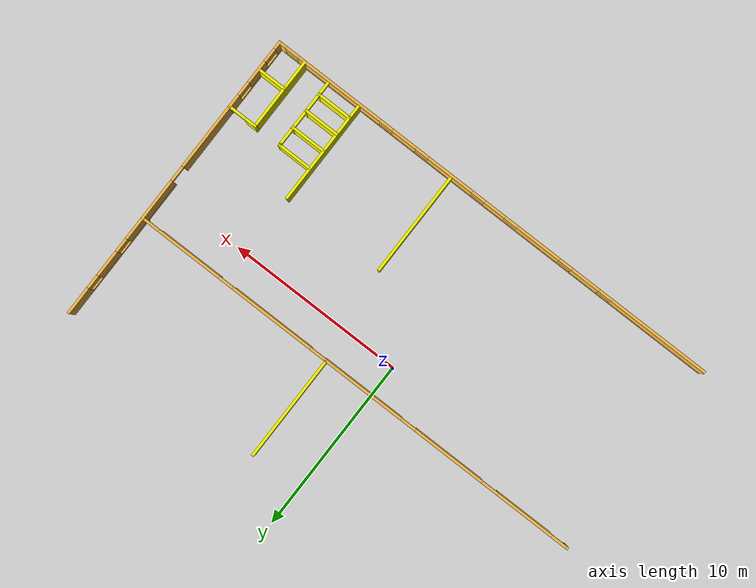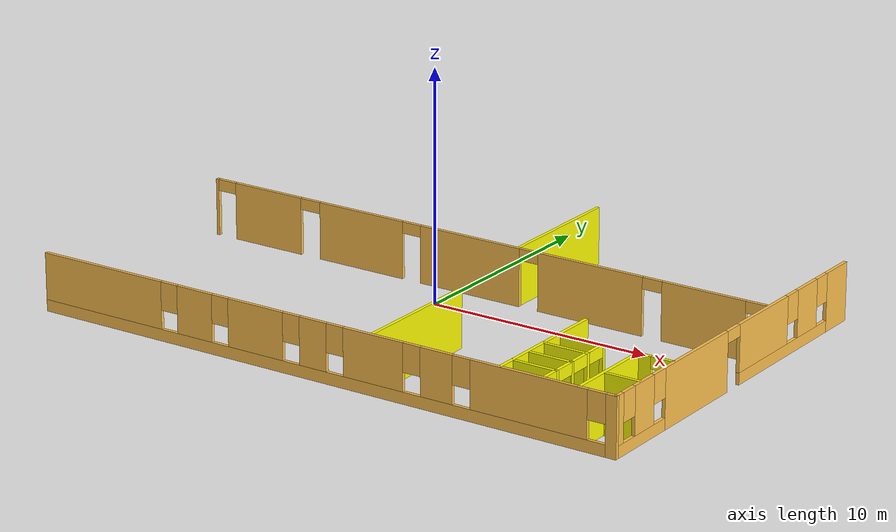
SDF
<sdf version="1.6">
 <model name="mybuilding">
  <pose>1.04921 -0.845204 0 0 -0 0</pose>
  <link name="Wall_149">
   <collision name="Wall_149_Collision">
    <geometry><box><size>6 0.15 2.5</size></box></geometry>
    <pose>0 0 1.25 0 -0 0</pose>
   </collision>
   <visual name="Wall_149_Visual">
    <pose>0 0 1.25 0 -0 0</pose>
    <geometry><box><size>6 0.15 2.5</size></box></geometry>
    <material>
     <script><uri>file://media/materials/scripts/gazebo.material</uri><name>Gazebo/Grey</name></script>
     <ambient>1 1 0 1</ambient>
    </material>
    <meta><layer>0</layer></meta>
   </visual>
   <pose>1.80042 5.59279 0 0 0 -1.5708</pose>
  </link>
  <link name="Wall_154">
   <collision name="Wall_154_Collision">
    <geometry><box><size>6 0.15 2.5</size></box></geometry>
    <pose>0 0 1.25 0 -0 0</pose>
   </collision>
   <visual name="Wall_154_Visual">
    <pose>0 0 1.25 0 -0 0</pose>
    <geometry><box><size>6 0.15 2.5</size></box></geometry>
    <material>
     <script><uri>file://media/materials/scripts/gazebo.material</uri><name>Gazebo/Grey</name></script>
     <ambient>1 1 0 1</ambient>
    </material>
    <meta><layer>0</layer></meta>
   </visual>
   <pose>2.51252 -5.57355 0 0 0 -1.5708</pose>
  </link>
  <link name="Wall_158">
   <collision name="Wall_158_Collision">
    <geometry><box><size>6 0.15 2.5</size></box></geometry>
    <pose>0 0 1.25 0 -0 0</pose>
   </collision>
   <visual name="Wall_158_Visual">
    <pose>0 0 1.25 0 -0 0</pose>
    <geometry><box><size>6 0.15 2.5</size></box></geometry>
    <material>
     <script><uri>file://media/materials/scripts/gazebo.material</uri><name>Gazebo/Grey</name></script>
     <ambient>1 1 0 1</ambient>
    </material>
    <meta><layer>0</layer></meta>
   </visual>
   <pose>8.34754 -5.57355 0 0 0 -1.5708</pose>
  </link>
  <link name="Wall_162">
   <collision name="Wall_162_Collision">
    <geometry><box><size>2 0.15 2.5</size></box></geometry>
    <pose>0 0 1.25 0 -0 0</pose>
   </collision>
   <visual name="Wall_162_Visual">
    <pose>0 0 1.25 0 -0 0</pose>
    <geometry><box><size>2 0.15 2.5</size></box></geometry>
    <material>
     <script><uri>file://media/materials/scripts/gazebo.material</uri><name>Gazebo/Grey</name></script>
     <ambient>1 1 0 1</ambient>
    </material>
    <meta><layer>0</layer></meta>
   </visual>
   <pose>9.34295 -4.49272 0 0 0 -8.3e-05</pose>
  </link>
  <link name="Wall_163">
   <pose>10.2678 -6.5178 0 0 0 -1.5708</pose>
   <visual name="Wall_163_Visual_0">
    <pose>-2.0133 0 1.25 0 -0 0</pose>
    <geometry><box><size>0.173407 0.15 2.5</size></box></geometry>
    <material>
     <script><uri>file://media/materials/scripts/gazebo.material</uri><name>Gazebo/Grey</name></script>
     <ambient>1 1 0 1</ambient>
    </material>
    <meta><layer>0</layer></meta>
   </visual>
   <collision name="Wall_163_Collision_0">
    <geometry><box><size>0.173407 0.15 2.5</size></box></geometry>
    <pose>-2.0133 0 1.25 0 -0 0</pose>
   </collision>
   <visual name="Wall_163_Visual_1">
    <pose>-0.937243 0 1.25 0 -0 0</pose>
    <geometry><box><size>0.1787 0.15 2.5</size></box></geometry>
    <material>
     <script><uri>file://media/materials/scripts/gazebo.material</uri><name>Gazebo/Grey</name></script>
     <ambient>1 1 0 1</ambient>
    </material>
    <meta><layer>0</layer></meta>
   </visual>
   <collision name="Wall_163_Collision_1">
    <geometry><box><size>0.1787 0.15 2.5</size></box></geometry>
    <pose>-0.937243 0 1.25 0 -0 0</pose>
   </collision>
   <visual name="Wall_163_Visual_2">
    <pose>0.125594 0 1.25 0 -0 0</pose>
    <geometry><box><size>0.146974 0.15 2.5</size></box></geometry>
    <material>
     <script><uri>file://media/materials/scripts/gazebo.material</uri><name>Gazebo/Grey</name></script>
     <ambient>1 1 0 1</ambient>
    </material>
    <meta><layer>0</layer></meta>
   </visual>
   <collision name="Wall_163_Collision_2">
    <geometry><box><size>0.146974 0.15 2.5</size></box></geometry>
    <pose>0.125594 0 1.25 0 -0 0</pose>
   </collision>
   <visual name="Wall_163_Visual_3">
    <pose>1.16567 0 1.25 0 -0 0</pose>
    <geometry><box><size>0.133179 0.15 2.5</size></box></geometry>
    <material>
     <script><uri>file://media/materials/scripts/gazebo.material</uri><name>Gazebo/Grey</name></script>
     <ambient>1 1 0 1</ambient>
    </material>
    <meta><layer>0</layer></meta>
   </visual>
   <collision name="Wall_163_Collision_3">
    <geometry><box><size>0.133179 0.15 2.5</size></box></geometry>
    <pose>1.16567 0 1.25 0 -0 0</pose>
   </collision>
   <visual name="Wall_163_Visual_4">
    <pose>-1.47659 0 2.25 0 -0 0</pose>
    <geometry><box><size>0.9 0.15 0.5</size></box></geometry>
    <material>
     <script><uri>file://media/materials/scripts/gazebo.material</uri><name>Gazebo/Grey</name></script>
     <ambient>1 1 0 1</ambient>
    </material>
    <meta><layer>0</layer></meta>
   </visual>
   <collision name="Wall_163_Collision_4">
    <geometry><box><size>0.9 0.15 0.5</size></box></geometry>
    <pose>-1.47659 0 2.25 0 -0 0</pose>
   </collision>
   <visual name="Wall_163_Visual_5">
    <pose>-0.397893 0 2.25 0 -0 0</pose>
    <geometry><box><size>0.9 0.15 0.5</size></box></geometry>
    <material>
     <script><uri>file://media/materials/scripts/gazebo.material</uri><name>Gazebo/Grey</name></script>
     <ambient>1 1 0 1</ambient>
    </material>
    <meta><layer>0</layer></meta>
   </visual>
   <collision name="Wall_163_Collision_5">
    <geometry><box><size>0.9 0.15 0.5</size></box></geometry>
    <pose>-0.397893 0 2.25 0 -0 0</pose>
   </collision>
   <visual name="Wall_163_Visual_6">
    <pose>0.649081 0 2.25 0 -0 0</pose>
    <geometry><box><size>0.9 0.15 0.5</size></box></geometry>
    <material>
     <script><uri>file://media/materials/scripts/gazebo.material</uri><name>Gazebo/Grey</name></script>
     <ambient>1 1 0 1</ambient>
    </material>
    <meta><layer>0</layer></meta>
   </visual>
   <collision name="Wall_163_Collision_6">
    <geometry><box><size>0.9 0.15 0.5</size></box></geometry>
    <pose>0.649081 0 2.25 0 -0 0</pose>
   </collision>
   <visual name="Wall_163_Visual_7">
    <pose>1.66613 0 2.25 0 -0 0</pose>
    <geometry><box><size>0.867739 0.15 0.5</size></box></geometry>
    <material>
     <script><uri>file://media/materials/scripts/gazebo.material</uri><name>Gazebo/Grey</name></script>
     <ambient>1 1 0 1</ambient>
    </material>
    <meta><layer>0</layer></meta>
   </visual>
   <collision name="Wall_163_Collision_7">
    <geometry><box><size>0.867739 0.15 0.5</size></box></geometry>
    <pose>1.66613 0 2.25 0 -0 0</pose>
   </collision>
  </link>
  <link name="Wall_171">
   <pose>12.6222 -4.4809 0 0 -0 3.14159</pose>
   <visual name="Wall_171_Visual_0">
    <pose>-0.79093 0 1.25 0 -0 0</pose>
    <geometry><box><size>0.168139 0.15 2.5</size></box></geometry>
    <material>
     <script><uri>file://media/materials/scripts/gazebo.material</uri><name>Gazebo/Grey</name></script>
     <ambient>1 1 0 1</ambient>
    </material>
    <meta><layer>0</layer></meta>
   </visual>
   <collision name="Wall_171_Collision_0">
    <geometry><box><size>0.168139 0.15 2.5</size></box></geometry>
    <pose>-0.79093 0 1.25 0 -0 0</pose>
   </collision>
   <visual name="Wall_171_Visual_1">
    <pose>0.53407 0 1.25 0 -0 0</pose>
    <geometry><box><size>0.681861 0.15 2.5</size></box></geometry>
    <material>
     <script><uri>file://media/materials/scripts/gazebo.material</uri><name>Gazebo/Grey</name></script>
     <ambient>1 1 0 1</ambient>
    </material>
    <meta><layer>0</layer></meta>
   </visual>
   <collision name="Wall_171_Collision_1">
    <geometry><box><size>0.681861 0.15 2.5</size></box></geometry>
    <pose>0.53407 0 1.25 0 -0 0</pose>
   </collision>
   <visual name="Wall_171_Visual_2">
    <pose>-0.256861 0 2.25 0 -0 0</pose>
    <geometry><box><size>0.9 0.15 0.5</size></box></geometry>
    <material>
     <script><uri>file://media/materials/scripts/gazebo.material</uri><name>Gazebo/Grey</name></script>
     <ambient>1 1 0 1</ambient>
    </material>
    <meta><layer>0</layer></meta>
   </visual>
   <collision name="Wall_171_Collision_2">
    <geometry><box><size>0.9 0.15 0.5</size></box></geometry>
    <pose>-0.256861 0 2.25 0 -0 0</pose>
   </collision>
  </link>
  <link name="Wall_172">
   <collision name="Wall_172_Collision">
    <geometry><box><size>4.2 0.15 2.5</size></box></geometry>
    <pose>0 0 1.25 0 -0 0</pose>
   </collision>
   <visual name="Wall_172_Visual">
    <pose>0 0 1.25 0 -0 0</pose>
    <geometry><box><size>4.2 0.15 2.5</size></box></geometry>
    <material>
     <script><uri>file://media/materials/scripts/gazebo.material</uri><name>Gazebo/Grey</name></script>
     <ambient>1 1 0 1</ambient>
    </material>
    <meta><layer>0</layer></meta>
   </visual>
   <pose>11.8222 -6.5059 0 0 0 -1.5708</pose>
  </link>
  <link name="Wall_174">
   <collision name="Wall_174_Collision">
    <geometry><box><size>1.65 0.15 2.5</size></box></geometry>
    <pose>0 0 1.25 0 -0 0</pose>
   </collision>
   <visual name="Wall_174_Visual">
    <pose>0 0 1.25 0 -0 0</pose>
    <geometry><box><size>1.65 0.15 2.5</size></box></geometry>
    <material>
     <script><uri>file://media/materials/scripts/gazebo.material</uri><name>Gazebo/Grey</name></script>
     <ambient>1 1 0 1</ambient>
    </material>
    <meta><layer>0</layer></meta>
   </visual>
   <pose>12.6046 -6.85286 0 0 -0 0</pose>
  </link>
  <link name="Wall_176">
   <collision name="Wall_176_Collision">
    <geometry><box><size>2 0.15 2.5</size></box></geometry>
    <pose>0 0 1.25 0 -0 0</pose>
   </collision>
   <visual name="Wall_176_Visual">
    <pose>0 0 1.25 0 -0 0</pose>
    <geometry><box><size>2 0.15 2.5</size></box></geometry>
    <material>
     <script><uri>file://media/materials/scripts/gazebo.material</uri><name>Gazebo/Grey</name></script>
     <ambient>1 1 0 1</ambient>
    </material>
    <meta><layer>0</layer></meta>
   </visual>
   <pose>9.29387 -6.66723 0 0 -0 0</pose>
  </link>
  <link name="Wall_179">
   <collision name="Wall_179_Collision">
    <geometry><box><size>2 0.15 2.5</size></box></geometry>
    <pose>0 0 1.25 0 -0 0</pose>
   </collision>
   <visual name="Wall_179_Visual">
    <pose>0 0 1.25 0 -0 0</pose>
    <geometry><box><size>2 0.15 2.5</size></box></geometry>
    <material>
     <script><uri>file://media/materials/scripts/gazebo.material</uri><name>Gazebo/Grey</name></script>
     <ambient>1 1 0 1</ambient>
    </material>
    <meta><layer>0</layer></meta>
   </visual>
   <pose>9.31988 -5.59469 0 0 -0 0</pose>
  </link>
  <link name="Wall_182">
   <collision name="Wall_182_Collision">
    <geometry><box><size>2 0.15 2.5</size></box></geometry>
    <pose>0 0 1.25 0 -0 0</pose>
   </collision>
   <visual name="Wall_182_Visual">
    <pose>0 0 1.25 0 -0 0</pose>
    <geometry><box><size>2 0.15 2.5</size></box></geometry>
    <material>
     <script><uri>file://media/materials/scripts/gazebo.material</uri><name>Gazebo/Grey</name></script>
     <ambient>1 1 0 1</ambient>
    </material>
    <meta><layer>0</layer></meta>
   </visual>
   <pose>9.29143 -7.70507 0 0 -0 0</pose>
  </link>
  <link name="Wall_91">
   <pose>13.425 0 0 0 0 -1.5708</pose>
   <visual name="Wall_91_Visual_0">
    <pose>-7.82957 0 1.25 0 -0 0</pose>
    <geometry><box><size>1.59086 0.15 2.5</size></box></geometry>
    <material>
     <script><uri>file://media/materials/scripts/gazebo.material</uri><name>Gazebo/Grey</name></script>
     <ambient>1 0.764706 0.305882 1</ambient>
    </material>
    <meta><layer>0</layer></meta>
   </visual>
   <collision name="Wall_91_Collision_0">
    <geometry><box><size>1.59086 0.15 2.5</size></box></geometry>
    <pose>-7.82957 0 1.25 0 -0 0</pose>
   </collision>
   <visual name="Wall_91_Visual_1">
    <pose>2.94053 0 1.25 0 -0 0</pose>
    <geometry><box><size>4.5435 0.15 2.5</size></box></geometry>
    <material>
     <script><uri>file://media/materials/scripts/gazebo.material</uri><name>Gazebo/Grey</name></script>
     <ambient>1 0.764706 0.305882 1</ambient>
    </material>
    <meta><layer>0</layer></meta>
   </visual>
   <collision name="Wall_91_Collision_1">
    <geometry><box><size>4.5435 0.15 2.5</size></box></geometry>
    <pose>2.94053 0 1.25 0 -0 0</pose>
   </collision>
   <visual name="Wall_91_Visual_2">
    <pose>-3.63268 0 0.25 0 -0 0</pose>
    <geometry><box><size>6.80292 0.15 0.5</size></box></geometry>
    <material>
     <script><uri>file://media/materials/scripts/gazebo.material</uri><name>Gazebo/Grey</name></script>
     <ambient>1 0.764706 0.305882 1</ambient>
    </material>
    <meta><layer>0</layer></meta>
   </visual>
   <collision name="Wall_91_Collision_2">
    <geometry><box><size>6.80292 0.15 0.5</size></box></geometry>
    <pose>-3.63268 0 0.25 0 -0 0</pose>
   </collision>
   <visual name="Wall_91_Visual_3">
    <pose>6.91864 0 0.25 0 -0 0</pose>
    <geometry><box><size>3.41272 0.15 0.5</size></box></geometry>
    <material>
     <script><uri>file://media/materials/scripts/gazebo.material</uri><name>Gazebo/Grey</name></script>
     <ambient>1 0.764706 0.305882 1</ambient>
    </material>
    <meta><layer>0</layer></meta>
   </visual>
   <collision name="Wall_91_Collision_3">
    <geometry><box><size>3.41272 0.15 0.5</size></box></geometry>
    <pose>6.91864 0 0.25 0 -0 0</pose>
   </collision>
   <visual name="Wall_91_Visual_4">
    <pose>-5.47612 0 1.5 0 -0 0</pose>
    <geometry><box><size>1.51603 0.15 2</size></box></geometry>
    <material>
     <script><uri>file://media/materials/scripts/gazebo.material</uri><name>Gazebo/Grey</name></script>
     <ambient>1 0.764706 0.305882 1</ambient>
    </material>
    <meta><layer>0</layer></meta>
   </visual>
   <collision name="Wall_91_Collision_4">
    <geometry><box><size>1.51603 0.15 2</size></box></geometry>
    <pose>-5.47612 0 1.5 0 -0 0</pose>
   </collision>
   <visual name="Wall_91_Visual_5">
    <pose>-2.07466 0 1.5 0 -0 0</pose>
    <geometry><box><size>3.68689 0.15 2</size></box></geometry>
    <material>
     <script><uri>file://media/materials/scripts/gazebo.material</uri><name>Gazebo/Grey</name></script>
     <ambient>1 0.764706 0.305882 1</ambient>
    </material>
    <meta><layer>0</layer></meta>
   </visual>
   <collision name="Wall_91_Collision_5">
    <geometry><box><size>3.68689 0.15 2</size></box></geometry>
    <pose>-2.07466 0 1.5 0 -0 0</pose>
   </collision>
   <visual name="Wall_91_Visual_6">
    <pose>-2.07466 0 1.5 0 -0 0</pose>
    <geometry><box><size>3.68689 0.15 2</size></box></geometry>
    <material>
     <script><uri>file://media/materials/scripts/gazebo.material</uri><name>Gazebo/Grey</name></script>
     <ambient>1 0.764706 0.305882 1</ambient>
    </material>
    <meta><layer>0</layer></meta>
   </visual>
   <collision name="Wall_91_Collision_6">
    <geometry><box><size>3.68689 0.15 2</size></box></geometry>
    <pose>-2.07466 0 1.5 0 -0 0</pose>
   </collision>
   <visual name="Wall_91_Visual_7">
    <pose>6.67512 0 1.5 0 -0 0</pose>
    <geometry><box><size>1.32567 0.15 2</size></box></geometry>
    <material>
     <script><uri>file://media/materials/scripts/gazebo.material</uri><name>Gazebo/Grey</name></script>
     <ambient>1 0.764706 0.305882 1</ambient>
    </material>
    <meta><layer>0</layer></meta>
   </visual>
   <collision name="Wall_91_Collision_7">
    <geometry><box><size>1.32567 0.15 2</size></box></geometry>
    <pose>6.67512 0 1.5 0 -0 0</pose>
   </collision>
   <visual name="Wall_91_Visual_8">
    <pose>8.38148 0 1.5 0 -0 0</pose>
    <geometry><box><size>0.487047 0.15 2</size></box></geometry>
    <material>
     <script><uri>file://media/materials/scripts/gazebo.material</uri><name>Gazebo/Grey</name></script>
     <ambient>1 0.764706 0.305882 1</ambient>
    </material>
    <meta><layer>0</layer></meta>
   </visual>
   <collision name="Wall_91_Collision_8">
    <geometry><box><size>0.487047 0.15 2</size></box></geometry>
    <pose>8.38148 0 1.5 0 -0 0</pose>
   </collision>
   <visual name="Wall_91_Visual_9">
    <pose>-6.63414 0 1.9 0 -0 0</pose>
    <geometry><box><size>0.8 0.15 1.2</size></box></geometry>
    <material>
     <script><uri>file://media/materials/scripts/gazebo.material</uri><name>Gazebo/Grey</name></script>
     <ambient>1 0.764706 0.305882 1</ambient>
    </material>
    <meta><layer>0</layer></meta>
   </visual>
   <collision name="Wall_91_Collision_9">
    <geometry><box><size>0.8 0.15 1.2</size></box></geometry>
    <pose>-6.63414 0 1.9 0 -0 0</pose>
   </collision>
   <visual name="Wall_91_Visual_10">
    <pose>5.61228 0 1.9 0 -0 0</pose>
    <geometry><box><size>0.8 0.15 1.2</size></box></geometry>
    <material>
     <script><uri>file://media/materials/scripts/gazebo.material</uri><name>Gazebo/Grey</name></script>
     <ambient>1 0.764706 0.305882 1</ambient>
    </material>
    <meta><layer>0</layer></meta>
   </visual>
   <collision name="Wall_91_Collision_10">
    <geometry><box><size>0.8 0.15 1.2</size></box></geometry>
    <pose>5.61228 0 1.9 0 -0 0</pose>
   </collision>
   <visual name="Wall_91_Visual_11">
    <pose>-4.31811 0 1.9 0 -0 0</pose>
    <geometry><box><size>0.8 0.15 1.2</size></box></geometry>
    <material>
     <script><uri>file://media/materials/scripts/gazebo.material</uri><name>Gazebo/Grey</name></script>
     <ambient>1 0.764706 0.305882 1</ambient>
    </material>
    <meta><layer>0</layer></meta>
   </visual>
   <collision name="Wall_91_Collision_11">
    <geometry><box><size>0.8 0.15 1.2</size></box></geometry>
    <pose>-4.31811 0 1.9 0 -0 0</pose>
   </collision>
   <visual name="Wall_91_Visual_12">
    <pose>7.73795 0 1.9 0 -0 0</pose>
    <geometry><box><size>0.8 0.15 1.2</size></box></geometry>
    <material>
     <script><uri>file://media/materials/scripts/gazebo.material</uri><name>Gazebo/Grey</name></script>
     <ambient>1 0.764706 0.305882 1</ambient>
    </material>
    <meta><layer>0</layer></meta>
   </visual>
   <collision name="Wall_91_Collision_12">
    <geometry><box><size>0.8 0.15 1.2</size></box></geometry>
    <pose>7.73795 0 1.9 0 -0 0</pose>
   </collision>
   <visual name="Wall_91_Visual_13">
    <pose>0.218779 0 2.25 0 -0 0</pose>
    <geometry><box><size>0.9 0.15 0.5</size></box></geometry>
    <material>
     <script><uri>file://media/materials/scripts/gazebo.material</uri><name>Gazebo/Grey</name></script>
     <ambient>1 0.764706 0.305882 1</ambient>
    </material>
    <meta><layer>0</layer></meta>
   </visual>
   <collision name="Wall_91_Collision_13">
    <geometry><box><size>0.9 0.15 0.5</size></box></geometry>
    <pose>0.218779 0 2.25 0 -0 0</pose>
   </collision>
   <visual name="Wall_91_Visual_14">
    <pose>0.218779 0 2.25 0 -0 0</pose>
    <geometry><box><size>0.9 0.15 0.5</size></box></geometry>
    <material>
     <script><uri>file://media/materials/scripts/gazebo.material</uri><name>Gazebo/Grey</name></script>
     <ambient>1 0.764706 0.305882 1</ambient>
    </material>
    <meta><layer>0</layer></meta>
   </visual>
   <collision name="Wall_91_Collision_14">
    <geometry><box><size>0.9 0.15 0.5</size></box></geometry>
    <pose>0.218779 0 2.25 0 -0 0</pose>
   </collision>
  </link>
  <link name="Wall_92">
   <pose>0 -8.55 0 0 -0 3.14159</pose>
   <visual name="Wall_92_Visual_0">
    <pose>-13.2614 0 1.25 0 -0 0</pose>
    <geometry><box><size>0.477212 0.15 2.5</size></box></geometry>
    <material>
     <script><uri>file://media/materials/scripts/gazebo.material</uri><name>Gazebo/Grey</name></script>
     <ambient>1 0.764706 0.305882 1</ambient>
    </material>
    <meta><layer>0</layer></meta>
   </visual>
   <collision name="Wall_92_Collision_0">
    <geometry><box><size>0.477212 0.15 2.5</size></box></geometry>
    <pose>-13.2614 0 1.25 0 -0 0</pose>
   </collision>
   <visual name="Wall_92_Visual_1">
    <pose>0.238606 0 0.25 0 -0 0</pose>
    <geometry><box><size>26.5228 0.15 0.5</size></box></geometry>
    <material>
     <script><uri>file://media/materials/scripts/gazebo.material</uri><name>Gazebo/Grey</name></script>
     <ambient>1 0.764706 0.305882 1</ambient>
    </material>
    <meta><layer>0</layer></meta>
   </visual>
   <collision name="Wall_92_Collision_1">
    <geometry><box><size>26.5228 0.15 0.5</size></box></geometry>
    <pose>0.238606 0 0.25 0 -0 0</pose>
   </collision>
   <visual name="Wall_92_Visual_2">
    <pose>-9.63968 0 1.5 0 -0 0</pose>
    <geometry><box><size>5.16621 0.15 2</size></box></geometry>
    <material>
     <script><uri>file://media/materials/scripts/gazebo.material</uri><name>Gazebo/Grey</name></script>
     <ambient>1 0.764706 0.305882 1</ambient>
    </material>
    <meta><layer>0</layer></meta>
   </visual>
   <collision name="Wall_92_Collision_2">
    <geometry><box><size>5.16621 0.15 2</size></box></geometry>
    <pose>-9.63968 0 1.5 0 -0 0</pose>
   </collision>
   <visual name="Wall_92_Visual_3">
    <pose>-5.52728 0 1.5 0 -0 0</pose>
    <geometry><box><size>1.45858 0.15 2</size></box></geometry>
    <material>
     <script><uri>file://media/materials/scripts/gazebo.material</uri><name>Gazebo/Grey</name></script>
     <ambient>1 0.764706 0.305882 1</ambient>
    </material>
    <meta><layer>0</layer></meta>
   </visual>
   <collision name="Wall_92_Collision_3">
    <geometry><box><size>1.45858 0.15 2</size></box></geometry>
    <pose>-5.52728 0 1.5 0 -0 0</pose>
   </collision>
   <visual name="Wall_92_Visual_4">
    <pose>-2.60995 0 1.5 0 -0 0</pose>
    <geometry><box><size>2.77609 0.15 2</size></box></geometry>
    <material>
     <script><uri>file://media/materials/scripts/gazebo.material</uri><name>Gazebo/Grey</name></script>
     <ambient>1 0.764706 0.305882 1</ambient>
    </material>
    <meta><layer>0</layer></meta>
   </visual>
   <collision name="Wall_92_Collision_4">
    <geometry><box><size>2.77609 0.15 2</size></box></geometry>
    <pose>-2.60995 0 1.5 0 -0 0</pose>
   </collision>
   <visual name="Wall_92_Visual_5">
    <pose>0.213279 0 1.5 0 -0 0</pose>
    <geometry><box><size>1.27037 0.15 2</size></box></geometry>
    <material>
     <script><uri>file://media/materials/scripts/gazebo.material</uri><name>Gazebo/Grey</name></script>
     <ambient>1 0.764706 0.305882 1</ambient>
    </material>
    <meta><layer>0</layer></meta>
   </visual>
   <collision name="Wall_92_Collision_5">
    <geometry><box><size>1.27037 0.15 2</size></box></geometry>
    <pose>0.213279 0 1.5 0 -0 0</pose>
   </collision>
   <visual name="Wall_92_Visual_6">
    <pose>2.9709 0 1.5 0 -0 0</pose>
    <geometry><box><size>2.64487 0.15 2</size></box></geometry>
    <material>
     <script><uri>file://media/materials/scripts/gazebo.material</uri><name>Gazebo/Grey</name></script>
     <ambient>1 0.764706 0.305882 1</ambient>
    </material>
    <meta><layer>0</layer></meta>
   </visual>
   <collision name="Wall_92_Collision_6">
    <geometry><box><size>2.64487 0.15 2</size></box></geometry>
    <pose>2.9709 0 1.5 0 -0 0</pose>
   </collision>
   <visual name="Wall_92_Visual_7">
    <pose>5.9481 0 1.5 0 -0 0</pose>
    <geometry><box><size>1.70954 0.15 2</size></box></geometry>
    <material>
     <script><uri>file://media/materials/scripts/gazebo.material</uri><name>Gazebo/Grey</name></script>
     <ambient>1 0.764706 0.305882 1</ambient>
    </material>
    <meta><layer>0</layer></meta>
   </visual>
   <collision name="Wall_92_Collision_7">
    <geometry><box><size>1.70954 0.15 2</size></box></geometry>
    <pose>5.9481 0 1.5 0 -0 0</pose>
   </collision>
   <visual name="Wall_92_Visual_8">
    <pose>10.5514 0 1.5 0 -0 0</pose>
    <geometry><box><size>5.89713 0.15 2</size></box></geometry>
    <material>
     <script><uri>file://media/materials/scripts/gazebo.material</uri><name>Gazebo/Grey</name></script>
     <ambient>1 0.764706 0.305882 1</ambient>
    </material>
    <meta><layer>0</layer></meta>
   </visual>
   <collision name="Wall_92_Collision_8">
    <geometry><box><size>5.89713 0.15 2</size></box></geometry>
    <pose>10.5514 0 1.5 0 -0 0</pose>
   </collision>
   <visual name="Wall_92_Visual_9">
    <pose>-12.6228 0 1.9 0 -0 0</pose>
    <geometry><box><size>0.8 0.15 1.2</size></box></geometry>
    <material>
     <script><uri>file://media/materials/scripts/gazebo.material</uri><name>Gazebo/Grey</name></script>
     <ambient>1 0.764706 0.305882 1</ambient>
    </material>
    <meta><layer>0</layer></meta>
   </visual>
   <collision name="Wall_92_Collision_9">
    <geometry><box><size>0.8 0.15 1.2</size></box></geometry>
    <pose>-12.6228 0 1.9 0 -0 0</pose>
   </collision>
   <visual name="Wall_92_Visual_10">
    <pose>-6.65658 0 1.9 0 -0 0</pose>
    <geometry><box><size>0.8 0.15 1.2</size></box></geometry>
    <material>
     <script><uri>file://media/materials/scripts/gazebo.material</uri><name>Gazebo/Grey</name></script>
     <ambient>1 0.764706 0.305882 1</ambient>
    </material>
    <meta><layer>0</layer></meta>
   </visual>
   <collision name="Wall_92_Collision_10">
    <geometry><box><size>0.8 0.15 1.2</size></box></geometry>
    <pose>-6.65658 0 1.9 0 -0 0</pose>
   </collision>
   <visual name="Wall_92_Visual_11">
    <pose>-4.39799 0 1.9 0 -0 0</pose>
    <geometry><box><size>0.8 0.15 1.2</size></box></geometry>
    <material>
     <script><uri>file://media/materials/scripts/gazebo.material</uri><name>Gazebo/Grey</name></script>
     <ambient>1 0.764706 0.305882 1</ambient>
    </material>
    <meta><layer>0</layer></meta>
   </visual>
   <collision name="Wall_92_Collision_11">
    <geometry><box><size>0.8 0.15 1.2</size></box></geometry>
    <pose>-4.39799 0 1.9 0 -0 0</pose>
   </collision>
   <visual name="Wall_92_Visual_12">
    <pose>-0.821904 0 1.9 0 -0 0</pose>
    <geometry><box><size>0.8 0.15 1.2</size></box></geometry>
    <material>
     <script><uri>file://media/materials/scripts/gazebo.material</uri><name>Gazebo/Grey</name></script>
     <ambient>1 0.764706 0.305882 1</ambient>
    </material>
    <meta><layer>0</layer></meta>
   </visual>
   <collision name="Wall_92_Collision_12">
    <geometry><box><size>0.8 0.15 1.2</size></box></geometry>
    <pose>-0.821904 0 1.9 0 -0 0</pose>
   </collision>
   <visual name="Wall_92_Visual_13">
    <pose>1.24846 0 1.9 0 -0 0</pose>
    <geometry><box><size>0.8 0.15 1.2</size></box></geometry>
    <material>
     <script><uri>file://media/materials/scripts/gazebo.material</uri><name>Gazebo/Grey</name></script>
     <ambient>1 0.764706 0.305882 1</ambient>
    </material>
    <meta><layer>0</layer></meta>
   </visual>
   <collision name="Wall_92_Collision_13">
    <geometry><box><size>0.8 0.15 1.2</size></box></geometry>
    <pose>1.24846 0 1.9 0 -0 0</pose>
   </collision>
   <visual name="Wall_92_Visual_14">
    <pose>4.69333 0 1.9 0 -0 0</pose>
    <geometry><box><size>0.8 0.15 1.2</size></box></geometry>
    <material>
     <script><uri>file://media/materials/scripts/gazebo.material</uri><name>Gazebo/Grey</name></script>
     <ambient>1 0.764706 0.305882 1</ambient>
    </material>
    <meta><layer>0</layer></meta>
   </visual>
   <collision name="Wall_92_Collision_14">
    <geometry><box><size>0.8 0.15 1.2</size></box></geometry>
    <pose>4.69333 0 1.9 0 -0 0</pose>
   </collision>
   <visual name="Wall_92_Visual_15">
    <pose>7.20287 0 1.9 0 -0 0</pose>
    <geometry><box><size>0.8 0.15 1.2</size></box></geometry>
    <material>
     <script><uri>file://media/materials/scripts/gazebo.material</uri><name>Gazebo/Grey</name></script>
     <ambient>1 0.764706 0.305882 1</ambient>
    </material>
    <meta><layer>0</layer></meta>
   </visual>
   <collision name="Wall_92_Collision_15">
    <geometry><box><size>0.8 0.15 1.2</size></box></geometry>
    <pose>7.20287 0 1.9 0 -0 0</pose>
   </collision>
  </link>
  <link name="Wall_94">
   <pose>0.000509 2.58798 0 0 -0 0</pose>
   <visual name="Wall_94_Visual_0">
    <pose>-13.4076 0 1.25 0 -0 0</pose>
    <geometry><box><size>0.134873 0.15 2.5</size></box></geometry>
    <material>
     <script><uri>file://media/materials/scripts/gazebo.material</uri><name>Gazebo/Grey</name></script>
     <ambient>1 0.764706 0.305882 1</ambient>
    </material>
    <meta><layer>0</layer></meta>
   </visual>
   <collision name="Wall_94_Collision_0">
    <geometry><box><size>0.134873 0.15 2.5</size></box></geometry>
    <pose>-13.4076 0 1.25 0 -0 0</pose>
   </collision>
   <visual name="Wall_94_Visual_1">
    <pose>-10.7308 0 1.25 0 -0 0</pose>
    <geometry><box><size>3.41873 0.15 2.5</size></box></geometry>
    <material>
     <script><uri>file://media/materials/scripts/gazebo.material</uri><name>Gazebo/Grey</name></script>
     <ambient>1 0.764706 0.305882 1</ambient>
    </material>
    <meta><layer>0</layer></meta>
   </visual>
   <collision name="Wall_94_Collision_1">
    <geometry><box><size>3.41873 0.15 2.5</size></box></geometry>
    <pose>-10.7308 0 1.25 0 -0 0</pose>
   </collision>
   <visual name="Wall_94_Visual_2">
    <pose>-5.94135 0 1.25 0 -0 0</pose>
    <geometry><box><size>4.19405 0.15 2.5</size></box></geometry>
    <material>
     <script><uri>file://media/materials/scripts/gazebo.material</uri><name>Gazebo/Grey</name></script>
     <ambient>1 0.764706 0.305882 1</ambient>
    </material>
    <meta><layer>0</layer></meta>
   </visual>
   <collision name="Wall_94_Collision_2">
    <geometry><box><size>4.19405 0.15 2.5</size></box></geometry>
    <pose>-5.94135 0 1.25 0 -0 0</pose>
   </collision>
   <visual name="Wall_94_Visual_3">
    <pose>-0.522336 0 1.25 0 -0 0</pose>
    <geometry><box><size>4.84399 0.15 2.5</size></box></geometry>
    <material>
     <script><uri>file://media/materials/scripts/gazebo.material</uri><name>Gazebo/Grey</name></script>
     <ambient>1 0.764706 0.305882 1</ambient>
    </material>
    <meta><layer>0</layer></meta>
   </visual>
   <collision name="Wall_94_Collision_3">
    <geometry><box><size>4.84399 0.15 2.5</size></box></geometry>
    <pose>-0.522336 0 1.25 0 -0 0</pose>
   </collision>
   <visual name="Wall_94_Visual_4">
    <pose>5.25225 0 1.25 0 -0 0</pose>
    <geometry><box><size>4.90518 0.15 2.5</size></box></geometry>
    <material>
     <script><uri>file://media/materials/scripts/gazebo.material</uri><name>Gazebo/Grey</name></script>
     <ambient>1 0.764706 0.305882 1</ambient>
    </material>
    <meta><layer>0</layer></meta>
   </visual>
   <collision name="Wall_94_Collision_4">
    <geometry><box><size>4.90518 0.15 2.5</size></box></geometry>
    <pose>5.25225 0 1.25 0 -0 0</pose>
   </collision>
   <visual name="Wall_94_Visual_5">
    <pose>10.5045 0 1.25 0 -0 0</pose>
    <geometry><box><size>3.79929 0.15 2.5</size></box></geometry>
    <material>
     <script><uri>file://media/materials/scripts/gazebo.material</uri><name>Gazebo/Grey</name></script>
     <ambient>1 0.764706 0.305882 1</ambient>
    </material>
    <meta><layer>0</layer></meta>
   </visual>
   <collision name="Wall_94_Collision_5">
    <geometry><box><size>3.79929 0.15 2.5</size></box></geometry>
    <pose>10.5045 0 1.25 0 -0 0</pose>
   </collision>
   <visual name="Wall_94_Visual_6">
    <pose>13.3896 0 1.25 0 -0 0</pose>
    <geometry><box><size>0.170873 0.15 2.5</size></box></geometry>
    <material>
     <script><uri>file://media/materials/scripts/gazebo.material</uri><name>Gazebo/Grey</name></script>
     <ambient>1 0.764706 0.305882 1</ambient>
    </material>
    <meta><layer>0</layer></meta>
   </visual>
   <collision name="Wall_94_Collision_6">
    <geometry><box><size>0.170873 0.15 2.5</size></box></geometry>
    <pose>13.3896 0 1.25 0 -0 0</pose>
   </collision>
   <visual name="Wall_94_Visual_7">
    <pose>-12.8901 0 2.25 0 -0 0</pose>
    <geometry><box><size>0.9 0.15 0.5</size></box></geometry>
    <material>
     <script><uri>file://media/materials/scripts/gazebo.material</uri><name>Gazebo/Grey</name></script>
     <ambient>1 0.764706 0.305882 1</ambient>
    </material>
    <meta><layer>0</layer></meta>
   </visual>
   <collision name="Wall_94_Collision_7">
    <geometry><box><size>0.9 0.15 0.5</size></box></geometry>
    <pose>-12.8901 0 2.25 0 -0 0</pose>
   </collision>
   <visual name="Wall_94_Visual_8">
    <pose>-8.52989 0 2.25 0 -0 0</pose>
    <geometry><box><size>0.983019 0.15 0.5</size></box></geometry>
    <material>
     <script><uri>file://media/materials/scripts/gazebo.material</uri><name>Gazebo/Grey</name></script>
     <ambient>1 0.764706 0.305882 1</ambient>
    </material>
    <meta><layer>0</layer></meta>
   </visual>
   <collision name="Wall_94_Collision_8">
    <geometry><box><size>0.983019 0.15 0.5</size></box></geometry>
    <pose>-8.52989 0 2.25 0 -0 0</pose>
   </collision>
   <visual name="Wall_94_Visual_9">
    <pose>-3.39433 0 2.25 0 -0 0</pose>
    <geometry><box><size>0.9 0.15 0.5</size></box></geometry>
    <material>
     <script><uri>file://media/materials/scripts/gazebo.material</uri><name>Gazebo/Grey</name></script>
     <ambient>1 0.764706 0.305882 1</ambient>
    </material>
    <meta><layer>0</layer></meta>
   </visual>
   <collision name="Wall_94_Collision_9">
    <geometry><box><size>0.9 0.15 0.5</size></box></geometry>
    <pose>-3.39433 0 2.25 0 -0 0</pose>
   </collision>
   <visual name="Wall_94_Visual_10">
    <pose>2.34966 0 2.25 0 -0 0</pose>
    <geometry><box><size>0.9 0.15 0.5</size></box></geometry>
    <material>
     <script><uri>file://media/materials/scripts/gazebo.material</uri><name>Gazebo/Grey</name></script>
     <ambient>1 0.764706 0.305882 1</ambient>
    </material>
    <meta><layer>0</layer></meta>
   </visual>
   <collision name="Wall_94_Collision_10">
    <geometry><box><size>0.9 0.15 0.5</size></box></geometry>
    <pose>2.34966 0 2.25 0 -0 0</pose>
   </collision>
   <visual name="Wall_94_Visual_11">
    <pose>8.15483 0 2.25 0 -0 0</pose>
    <geometry><box><size>0.9 0.15 0.5</size></box></geometry>
    <material>
     <script><uri>file://media/materials/scripts/gazebo.material</uri><name>Gazebo/Grey</name></script>
     <ambient>1 0.764706 0.305882 1</ambient>
    </material>
    <meta><layer>0</layer></meta>
   </visual>
   <collision name="Wall_94_Collision_11">
    <geometry><box><size>0.9 0.15 0.5</size></box></geometry>
    <pose>8.15483 0 2.25 0 -0 0</pose>
   </collision>
   <visual name="Wall_94_Visual_12">
    <pose>12.8541 0 2.25 0 -0 0</pose>
    <geometry><box><size>0.9 0.15 0.5</size></box></geometry>
    <material>
     <script><uri>file://media/materials/scripts/gazebo.material</uri><name>Gazebo/Grey</name></script>
     <ambient>1 0.764706 0.305882 1</ambient>
    </material>
    <meta><layer>0</layer></meta>
   </visual>
   <collision name="Wall_94_Collision_12">
    <geometry><box><size>0.9 0.15 0.5</size></box></geometry>
    <pose>12.8541 0 2.25 0 -0 0</pose>
   </collision>
  </link>
  <static>1</static>
 </model>
</sdf>
